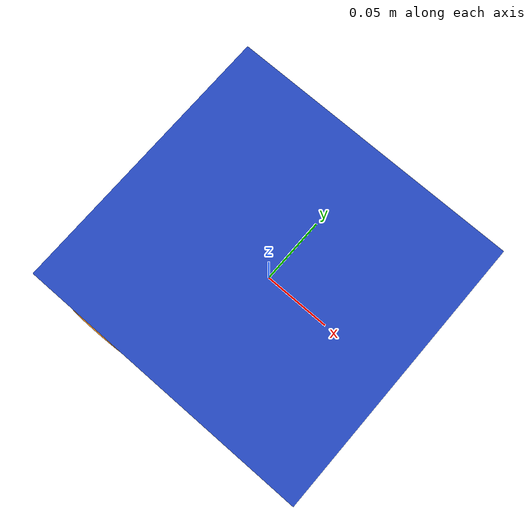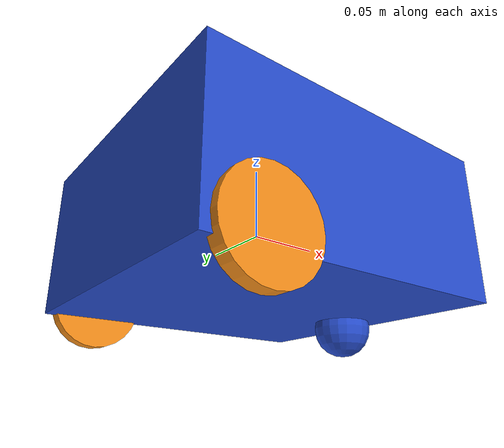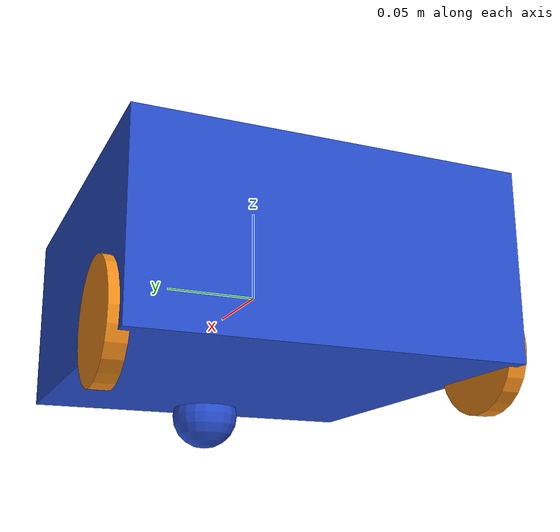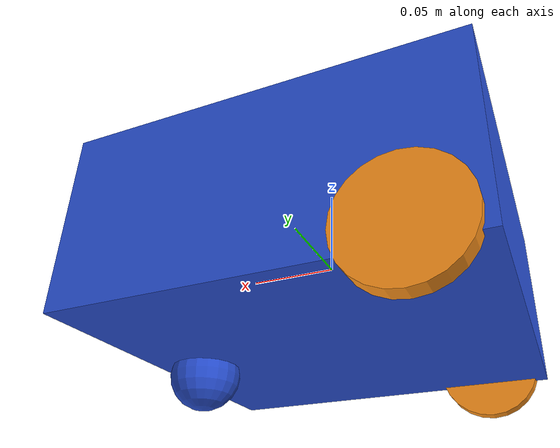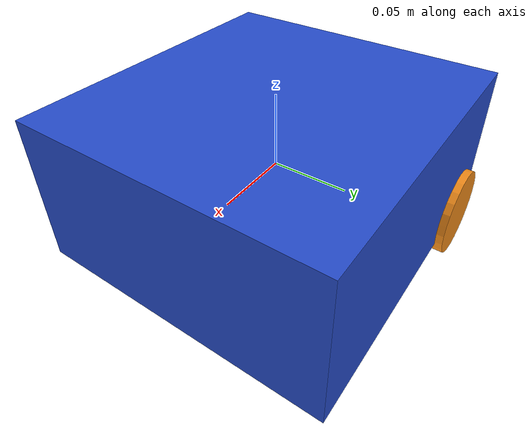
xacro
<?xml version="1.0"?>
<robot name="m2wr" xmlns:xacro="http://www.ros.org/wiki/xacro">

   <xacro:include filename="$(find my_robot_urdf)/urdf_roscontrol/urdf/material.xacro" />
   <xacro:include filename="$(find my_robot_urdf)/urdf_roscontrol/urdf/robotnyoba.gazebo" />
   <xacro:include filename="$(find my_robot_urdf)/urdf_roscontrol/urdf/macroslinkwheel.xacro" />

   <link name="link_chassis">
    <!-- pose and inertial -->
    <pose>0 0 0.1 0 0 0</pose>
    <inertial>
      <mass value="2.5"/>
      <origin rpy="0 0 0" xyz="0 0 0.1"/>
      <inertia ixx="0.0395416666667" ixy="0" ixz="0" iyy="0.106208333333" iyz="0" izz="0.106208333333"/>
    </inertial>
    <!-- body -->
    <collision name="collision_chassis">
      <geometry>
        <box size="0.21 0.20 0.1"/>
      </geometry>
    </collision>
    <visual>
      <origin rpy="0 0 0" xyz="0 0 0"/>
      <geometry>
        <box size="0.21 0.20 0.1"/>
      </geometry>
      <material name="blue"/>
    </visual>
    <!-- caster front -->
    <collision name="caster_front_collision">
      <origin rpy=" 0 0 0" xyz="0.35 0 -0.055"/>
      <geometry>
        <sphere radius="0.02"/>
      </geometry>
      <surface>
        <friction>
          <ode>
            <mu></mu>
            <mu2></mu2>
            <slip1>1.0</slip1>
            <slip2>1.0</slip2>
          </ode>
        </friction>
      </surface>
    </collision>
    <visual name="caster_front_visual">
      <origin rpy=" 0 0 0" xyz="0.08 0 -0.055"/>
      <geometry>
        <sphere radius="0.02"/>
      </geometry>
    </visual>
  </link>

  <xacro:link_wheel name="link_right_wheel" />
  <xacro:joint_wheel name="joint_right_wheel" child="link_right_wheel" origin_xyz="-0.07 0.1 -0.04" />

  <xacro:link_wheel name="link_left_wheel" />
  <xacro:joint_wheel name="joint_left_wheel" child="link_left_wheel" origin_xyz="-0.07 -0.1 -0.04" />

  <transmission name="transmission_right_wheel">
    <type>transmission_interface/SimpleTransmission</type>
    <joint name="joint_right_wheel">
      <hardwareInterface>hardware_interface/VelocityJointInterface</hardwareInterface>
    </joint>
    <actuator name="motor_right_wheel">
      <hardwareInterface>VelocityJointInterface</hardwareInterface>
      <mechanicalReduction>1</mechanicalReduction>
    </actuator>
  </transmission>

  <transmission name="transmission_left_wheel">
    <type>transmission_interface/SimpleTransmission</type>
    <joint name="joint_left_wheel">
      <hardwareInterface>hardware_interface/VelocityJointInterface</hardwareInterface>
    </joint>
    <actuator name="motor_left_wheel">
      <hardwareInterface>VelocityJointInterface</hardwareInterface>
      <mechanicalReduction>1</mechanicalReduction>
    </actuator>
  </transmission>

</robot>

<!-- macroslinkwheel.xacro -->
<robot>
    <macro name ="link_wheel" params="name">
       <link name="${name}">
          <inertial>
            <mass value="0.2"/>
            <origin rpy="0 1.5707 1.5707" xyz="0 0 0"/>
            <inertia ixx="0.000526666666667" ixy="0" ixz="0" iyy="0.000526666666667" iyz="0" izz="0.001"/>
          </inertial>
       <collision name="${name}_collision">
          <origin rpy="0 1.5707 1.5707" xyz="0 0 0"/>
          <geometry>
            <cylinder length="0.01" radius="0.03"/>
          </geometry>
       </collision>
       <visual name="${name}_visual">
          <origin rpy="0 1.5707 1.5707" xyz="0 0 0"/>
          <geometry>
            <cylinder length="0.01" radius="0.03"/>
          </geometry>
       </visual>
       </link>
    </macro>
    <macro name="joint_wheel" params="name child origin_xyz ">
       <joint name="${name}" type="continuous">
          <origin rpy="0 0 0" xyz="${origin_xyz}"/>
          <child link="${child}"/>
          <parent link="link_chassis"/>
          <axis rpy="0 0 0" xyz="0 1 0"/>
          <limit effort="10000" velocity="1000"/>
          <joint_properties damping="1.0" friction="1.0"/>
       </joint>
    </macro>
</robot>
